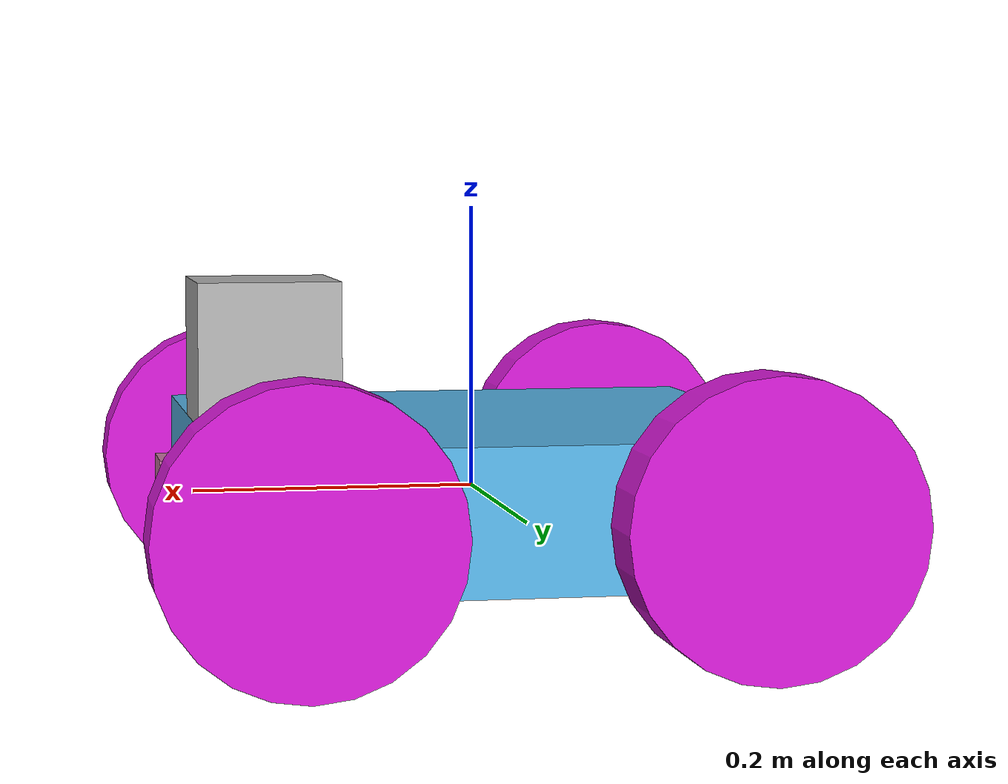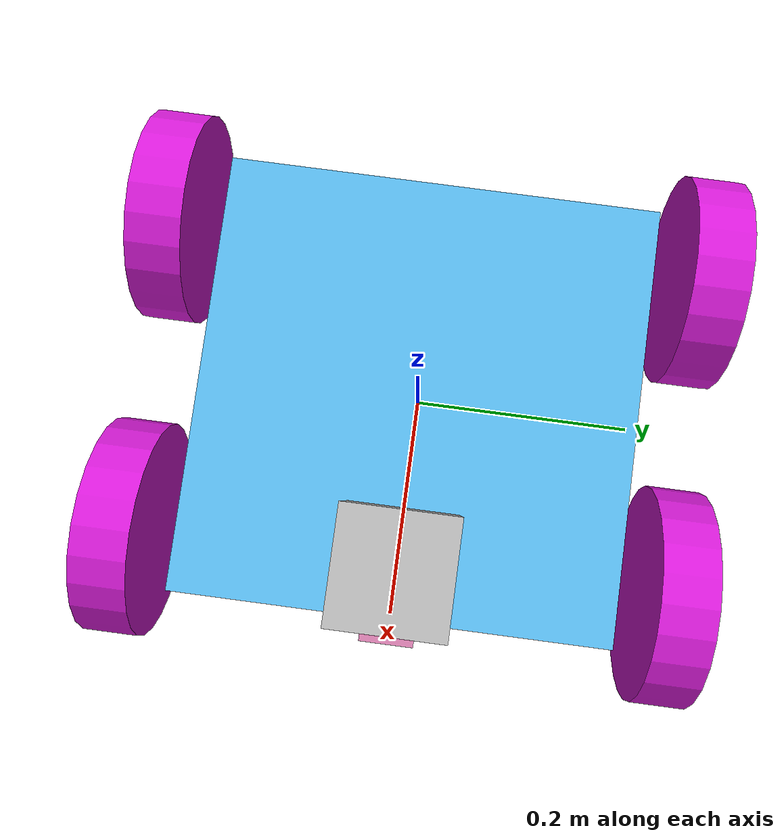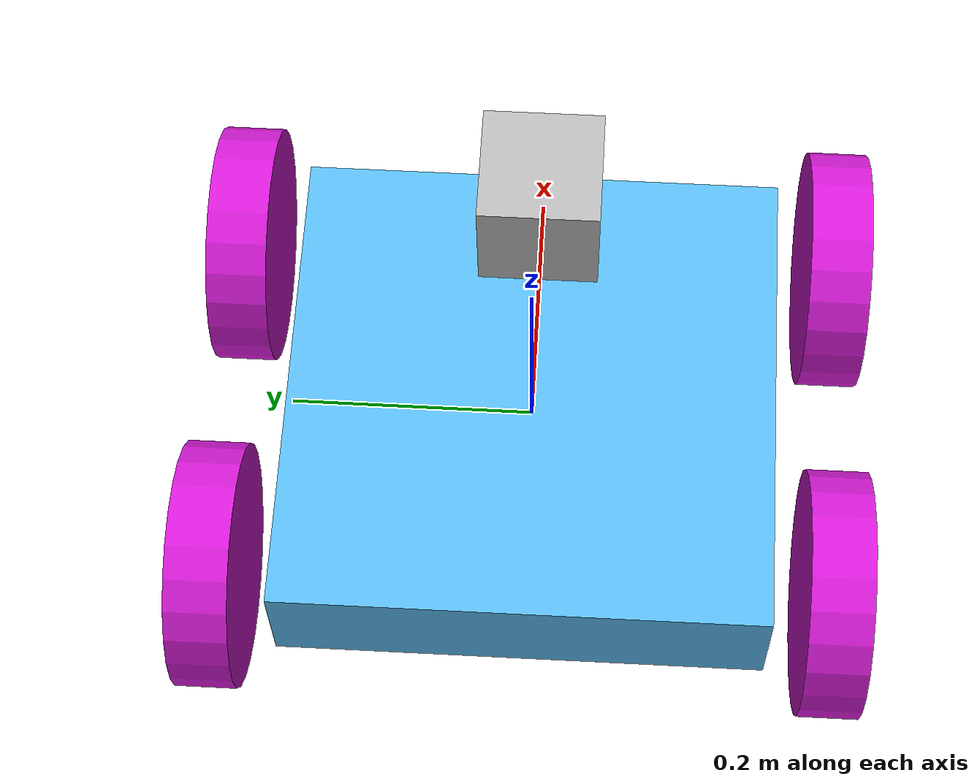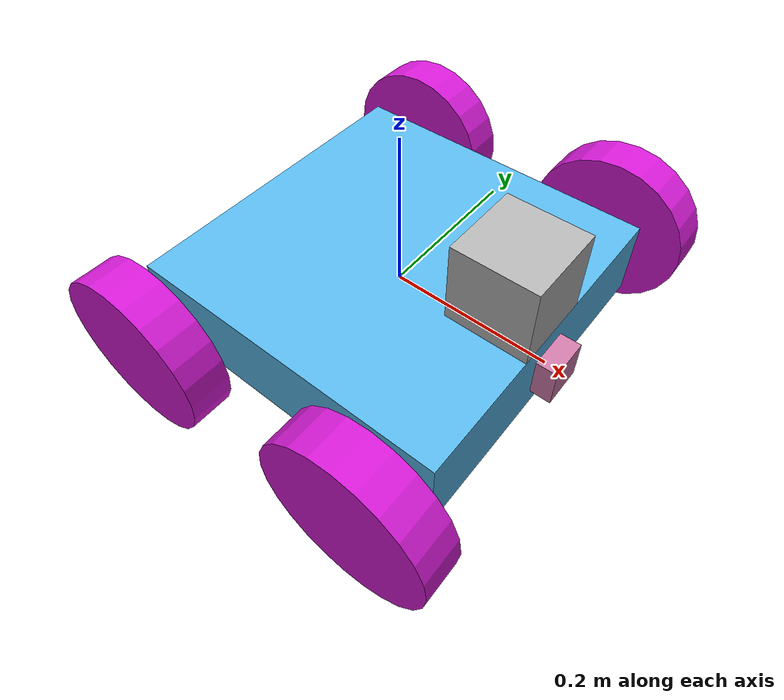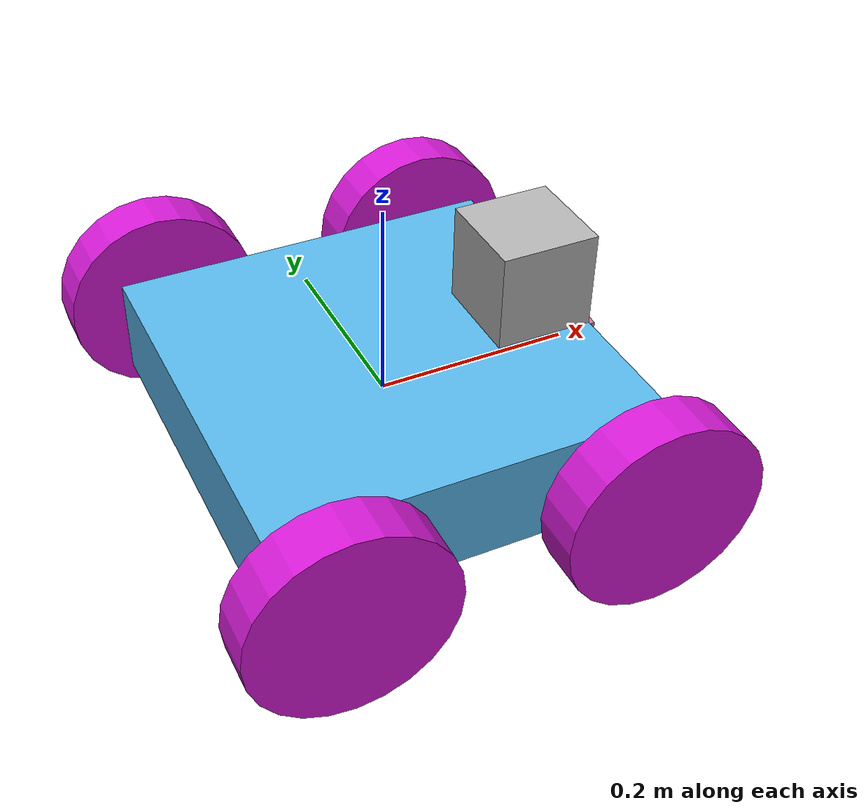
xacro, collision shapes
<?xml version='1.0'?>

<robot name="udacity_bot" xmlns:xacro="http://www.ros.org/wiki/xacro">

  <xacro:include filename="$(find udacity_bot)/urdf/udacity_bot.gazebo" />

  <link name="robot_footprint"></link>

  <joint name="robot_footprint_joint" type="fixed">
    <origin xyz="0 0 0" rpy="0 0 0" />
    <parent link="robot_footprint"/>
    <child link="chassis" />
  </joint>

  <link name='chassis'>
    <pose>0 0 0 0 0 0</pose>

    <inertial>
      <mass value="5.0"/>
      <origin xyz="0.0 0 0" rpy=" 0 0 0"/>
      <inertia
          ixx="0.1" ixy="0" ixz="0"
          iyy="0.1" iyz="0"
          izz="0.1"
      />
    </inertial>

    <collision name='collision'>
      <origin xyz="0 0 0" rpy=" 0 0 0"/>
      <geometry>
        <box size=".4 .4 .1"/>
      </geometry>
    </collision>

    <visual name='chassis_visual'>
      <origin xyz="-0.04 0 0" rpy=" 0 0 0"/>
      <geometry>
        <mesh filename="package://udacity_bot/meshes/chassis.dae" scale="1 1.1 1"/>
      </geometry>
    </visual>

  </link>

  <!-- wheels -->
  <joint type="continuous" name="back_left_wheel_joint">
    <origin xyz="-0.15 0.25 0" rpy="0 0 0"/>
    <child link="back_left_wheel"/>
    <parent link="chassis"/>
    <axis xyz="0 1 0" rpy="0 0 0"/>
    <limit effort="10000" velocity="1000"/>
    <joint_properties damping="1.0" friction="1.0"/>
  </joint>

  <link name='back_left_wheel'>
    <inertial>
      <mass value="5.0"/>
      <origin xyz="0.0 0 0" rpy=" 0 1.5707 1.5707"/>
      <inertia
          ixx="0.1" ixy="0" ixz="0"
          iyy="0.1" iyz="0"
          izz="0.1"
      />
    </inertial>

    <collision name='back_left_wheel_collision'>
      <origin xyz="0.0 0 0" rpy=" 0 1.5707 1.5707"/>
      <geometry>
        <cylinder length="0.05" radius="0.1"/>
      </geometry>
    </collision>

    <visual name='back_left_wheel_visual'>
      <origin xyz="0.0 0 0" rpy=" 0 1.5707 0"/>
      <geometry>
        <mesh filename="package://udacity_bot/meshes/wheel.dae" scale="1 1 1"/>
      </geometry>
      <material name="back_left_wheel_color">
        <color rgba="0.83 0.1 0.83 1"/>
      </material>
    </visual>
  </link>

  <joint type="continuous" name="back_right_wheel_joint">
    <origin xyz="-0.15 -0.25 0" rpy="0 0 0"/>
    <child link="back_right_wheel"/>
    <parent link="chassis"/>
    <axis xyz="0 1 0" rpy="0 0 0"/>
    <limit effort="10000" velocity="1000"/>
    <joint_properties damping="1.0" friction="1.0"/>
  </joint>

  <link name='back_right_wheel'>
    <inertial>
      <mass value="5.0"/>
      <origin xyz="0.0 0 0" rpy=" 0 1.5707 1.5707"/>
      <inertia
          ixx="0.1" ixy="0" ixz="0"
          iyy="0.1" iyz="0"
          izz="0.1"
      />
    </inertial>

    <collision name='back_right_wheel_collision'>
      <origin xyz="0.0 0 0" rpy=" 0 1.5707 1.5707"/>
      <geometry>
        <cylinder length="0.05" radius="0.1"/>
      </geometry>
    </collision>

    <visual name='back_right_wheel_visual'>
      <origin xyz="0.0 0 0" rpy=" 0 1.5707 3.14"/>
      <geometry>
        <mesh filename="package://udacity_bot/meshes/wheel.dae" scale="1 1 1"/>
      </geometry>
      <material name="back_right_wheel_color">
        <color rgba="0.83 0.1 0.83 1"/>
      </material>
    </visual>
  </link>

  <joint type="continuous" name="front_left_wheel_joint">
    <origin xyz="0.15 0.25 0" rpy="0 0 0"/>
    <child link="front_left_wheel"/>
    <parent link="chassis"/>
    <axis xyz="0 1 0" rpy="0 0 0"/>
    <limit effort="10000" velocity="1000"/>
    <joint_properties damping="1.0" friction="1.0"/>
  </joint>

  <link name='front_left_wheel'>
    <inertial>
      <mass value="5.0"/>
      <origin xyz="0.0 0 0" rpy=" 0 1.5707 1.5707"/>
      <inertia
          ixx="0.1" ixy="0" ixz="0"
          iyy="0.1" iyz="0"
          izz="0.1"
      />
    </inertial>

    <collision name='front_left_wheel_collision'>
      <origin xyz="0.0 0 0" rpy=" 0 1.5707 1.5707"/>
      <geometry>
        <cylinder length="0.05" radius="0.1"/>
      </geometry>
    </collision>

    <visual name='front_left_wheel_visual'>
      <origin xyz="0.0 0 0" rpy=" 0 1.5707 0"/>
      <geometry>
        <mesh filename="package://udacity_bot/meshes/wheel.dae" scale="1 1 1"/>
      </geometry>
      <material name="front_left_wheel_color">
        <color rgba="0.83 0.1 0.83 1"/>
      </material>
    </visual>
  </link>

  <joint type="continuous" name="front_right_wheel_joint">
    <origin xyz="0.15 -0.25 0" rpy="0 0 0"/>
    <child link="front_right_wheel"/>
    <parent link="chassis"/>
    <axis xyz="0 1 0" rpy="0 0 0"/>
    <limit effort="10000" velocity="1000"/>
    <joint_properties damping="1.0" friction="1.0"/>
  </joint>

  <link name='front_right_wheel'>
    <inertial>
      <mass value="5.0"/>
      <origin xyz="0.0 0 0" rpy=" 0 1.5707 1.5707"/>
      <inertia
          ixx="0.1" ixy="0" ixz="0"
          iyy="0.1" iyz="0"
          izz="0.1"
      />
    </inertial>

    <collision name='front_right_wheel_collision'>
      <origin xyz="0.0 0 0" rpy=" 0 1.5707 1.5707"/>
      <geometry>
        <cylinder length="0.05" radius="0.1"/>
      </geometry>
    </collision>

    <visual name='front_right_wheel_visual'>
      <origin xyz="0.0 0 0" rpy=" 0 1.5707 3.14"/>
      <geometry>
        <mesh filename="package://udacity_bot/meshes/wheel.dae" scale="1 1 1"/>
      </geometry>
      <material name="front_right_wheel_color">
        <color rgba="0.83 0.1 0.83 1"/>
      </material>
    </visual>
  </link>

  <!-- camera -->

  <joint type="fixed" name="camera_joint">
    <origin xyz="0.2 0 0" rpy="0 0 0"/>
    <child link="camera"/>
    <parent link="chassis"/>
  </joint>

  <link name='camera'>
    <inertial>
      <mass value="0.1"/>
      <origin xyz="0.0 0 0" rpy=" 0 0 0"/>
      <inertia
          ixx="1e-6" ixy="0" ixz="0"
          iyy="1e-6" iyz="0"
          izz="1e-6"
      />
    </inertial>

    <collision name='camera_collision'>
      <origin xyz="0.0 0 0" rpy=" 0 0 0"/>
      <geometry>
        <box size="0.05 0.05 0.05"/>
      </geometry>
    </collision>

    <visual name='camera_visual'>
      <origin xyz="0.0 0 0" rpy=" 0 0 0"/>
      <geometry>
        <box size="0.05 0.05 0.05"/>
      </geometry>
    </visual>
  </link>

  <!-- laser -->

  <joint type="fixed" name="hokuyo_joint">
    <origin xyz="0.15 0 0.1" rpy="0 0 0"/>
    <child link="hokuyo"/>
    <parent link="chassis"/>
  </joint>

  <link name='hokuyo'>
    <inertial>
      <mass value="0.1"/>
      <origin xyz="0.0 0 0" rpy=" 0 0 0"/>
      <inertia
          ixx="1e-6" ixy="0" ixz="0"
          iyy="1e-6" iyz="0"
          izz="1e-6"
      />
    </inertial>

    <collision name='hokuyo_collision'>
      <origin xyz="0.0 0 0" rpy=" 0 0 0"/>
      <geometry>
        <box size="0.1 0.1 0.1"/>
      </geometry>
    </collision>

    <visual name='hokuyo_visual'>
      <origin xyz="0.0 0 0" rpy=" 0 0 0"/>
      <geometry>
        <mesh filename="package://udacity_bot/meshes/hokuyo.dae"/>
      </geometry>
    </visual>
  </link>

</robot>
